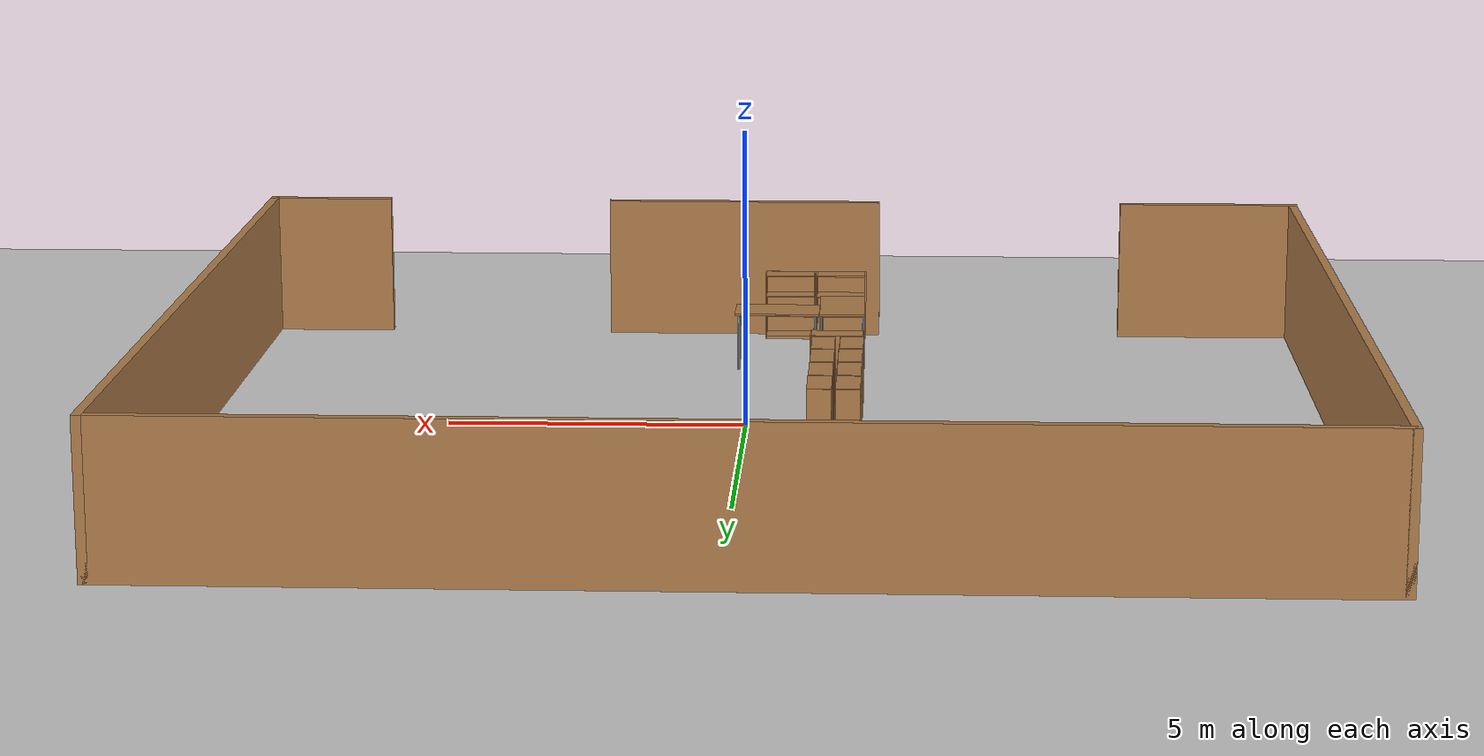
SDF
<sdf version="1.7">
 <world name="default">
  <model name="ground_plane">
   <static>1</static>
   <link name="link">
    <collision name="collision">
     <geometry><plane><normal>0 0 1</normal><size>100 100</size></plane></geometry>
     <surface><friction><ode><mu>100</mu><mu2>50</mu2></ode></friction></surface>
    </collision>
    <visual name="visual">
     <cast_shadows>0</cast_shadows>
     <geometry><plane><normal>0 0 1</normal><size>100 100</size></plane></geometry>
     <material>
      <script><uri>file://media/materials/scripts/gazebo.material</uri><name>Gazebo/Grey</name></script>
     </material>
    </visual>
   </link>
  </model>
  <model name="mart_walls">
   <pose>-0.362233 1.16692 0 0 -0 0</pose>
   <link name="Wall_10">
    <collision name="Wall_10_Collision">
     <geometry><box><size>5 0.15 2.5</size></box></geometry>
     <pose>0 0 1.25 0 -0 0</pose>
    </collision>
    <visual name="Wall_10_Visual">
     <pose>0 0 1.25 0 -0 0</pose>
     <geometry><box><size>5 0.15 2.5</size></box></geometry>
     <material>
      <script><uri>file://media/materials/scripts/gazebo.material</uri><name>Gazebo/Wood</name></script>
      <ambient>1 1 1 1</ambient>
     </material>
     <meta><layer>0</layer></meta>
    </visual>
    <pose>0.674648 -8.01815 0 0 -0 0</pose>
   </link>
   <link name="Wall_3">
    <collision name="Wall_3_Collision">
     <geometry><box><size>16.25 0.15 2.5</size></box></geometry>
     <pose>0 0 1.25 0 -0 0</pose>
    </collision>
    <visual name="Wall_3_Visual">
     <pose>0 0 1.25 0 -0 0</pose>
     <geometry><box><size>16.25 0.15 2.5</size></box></geometry>
     <material>
      <script><uri>file://media/materials/scripts/gazebo.material</uri><name>Gazebo/Wood</name></script>
      <ambient>1 1 1 1</ambient>
     </material>
     <meta><layer>0</layer></meta>
    </visual>
    <pose>-9.41858 -0 0 0 -0 1.5708</pose>
   </link>
   <link name="Wall_4">
    <collision name="Wall_4_Collision">
     <geometry><box><size>19 0.15 2.5</size></box></geometry>
     <pose>0 0 1.25 0 -0 0</pose>
    </collision>
    <visual name="Wall_4_Visual">
     <pose>0 0 1.25 0 -0 0</pose>
     <geometry><box><size>19 0.15 2.5</size></box></geometry>
     <material>
      <script><uri>file://media/materials/scripts/gazebo.material</uri><name>Gazebo/Wood</name></script>
      <ambient>1 1 1 1</ambient>
     </material>
     <meta><layer>0</layer></meta>
    </visual>
    <pose>0.006422 8.05 0 0 -0 0</pose>
   </link>
   <link name="Wall_5">
    <collision name="Wall_5_Collision">
     <geometry><box><size>16.25 0.15 2.5</size></box></geometry>
     <pose>0 0 1.25 0 -0 0</pose>
    </collision>
    <visual name="Wall_5_Visual">
     <pose>0 0 1.25 0 -0 0</pose>
     <geometry><box><size>16.25 0.15 2.5</size></box></geometry>
     <material>
      <script><uri>file://media/materials/scripts/gazebo.material</uri><name>Gazebo/Wood</name></script>
      <ambient>1 1 1 1</ambient>
     </material>
     <meta><layer>0</layer></meta>
    </visual>
    <pose>9.43142 -0 0 0 -0 -1.5708</pose>
   </link>
   <link name="Wall_6">
    <collision name="Wall_6_Collision">
     <geometry><box><size>2.25 0.15 2.5</size></box></geometry>
     <pose>0 0 1.25 0 -0 0</pose>
    </collision>
    <visual name="Wall_6_Visual">
     <pose>0 0 1.25 0 -0 0</pose>
     <geometry><box><size>2.25 0.15 2.5</size></box></geometry>
     <material>
      <script><uri>file://media/materials/scripts/gazebo.material</uri><name>Gazebo/Wood</name></script>
      <ambient>1 1 1 1</ambient>
     </material>
     <meta><layer>0</layer></meta>
    </visual>
    <pose>8.38142 -8.05 0 0 -0 3.14159</pose>
   </link>
   <link name="Wall_8">
    <collision name="Wall_8_Collision">
     <geometry><box><size>3.25 0.15 2.5</size></box></geometry>
     <pose>0 0 1.25 0 -0 0</pose>
    </collision>
    <visual name="Wall_8_Visual">
     <pose>0 0 1.25 0 -0 0</pose>
     <geometry><box><size>3.25 0.15 2.5</size></box></geometry>
     <material>
      <script><uri>file://media/materials/scripts/gazebo.material</uri><name>Gazebo/Wood</name></script>
      <ambient>1 1 1 1</ambient>
     </material>
     <meta><layer>0</layer></meta>
    </visual>
    <pose>-7.88142 -8.03854 0 0 -0 0</pose>
   </link>
   <static>1</static>
  </model>
  <model name="bookshelf_clone_1_clone_clone_4">
   <static>1</static>
   <link name="link">
    <inertial><mass>1</mass></inertial>
    <collision name="back">
     <pose>0 0.005 0.6 0 -0 0</pose>
     <geometry><box><size>0.9 0.01 1.2</size></box></geometry>
    </collision>
    <visual name="visual1">
     <pose>0 0.005 0.6 0 -0 0</pose>
     <geometry><box><size>0.9 0.01 1.2</size></box></geometry>
     <material>
      <script><uri>file://media/materials/scripts/gazebo.material</uri><name>Gazebo/Wood</name></script>
     </material>
    </visual>
    <collision name="left_side">
     <pose>0.45 -0.195 0.6 0 -0 0</pose>
     <geometry><box><size>0.02 0.4 1.2</size></box></geometry>
    </collision>
    <visual name="visual2">
     <pose>0.45 -0.195 0.6 0 -0 0</pose>
     <geometry><box><size>0.02 0.4 1.2</size></box></geometry>
     <material>
      <script><uri>file://media/materials/scripts/gazebo.material</uri><name>Gazebo/Wood</name></script>
     </material>
    </visual>
    <collision name="right_side">
     <pose>-0.45 -0.195 0.6 0 -0 0</pose>
     <geometry><box><size>0.02 0.4 1.2</size></box></geometry>
    </collision>
    <visual name="visual3">
     <pose>-0.45 -0.195 0.6 0 -0 0</pose>
     <geometry><box><size>0.02 0.4 1.2</size></box></geometry>
     <material>
      <script><uri>file://media/materials/scripts/gazebo.material</uri><name>Gazebo/Wood</name></script>
     </material>
    </visual>
    <collision name="bottom">
     <pose>0 -0.195 0.03 0 -0 0</pose>
     <geometry><box><size>0.88 0.4 0.06</size></box></geometry>
    </collision>
    <visual name="visual4">
     <pose>0 -0.195 0.03 0 -0 0</pose>
     <geometry><box><size>0.88 0.4 0.06</size></box></geometry>
     <material>
      <script><uri>file://media/materials/scripts/gazebo.material</uri><name>Gazebo/Wood</name></script>
     </material>
    </visual>
    <collision name="top">
     <pose>0 -0.195 1.19 0 -0 0</pose>
     <geometry><box><size>0.88 0.4 0.02</size></box></geometry>
    </collision>
    <visual name="visual5">
     <pose>0 -0.195 1.19 0 -0 0</pose>
     <geometry><box><size>0.88 0.4 0.02</size></box></geometry>
     <material>
      <script><uri>file://media/materials/scripts/gazebo.material</uri><name>Gazebo/Wood</name></script>
     </material>
    </visual>
    <collision name="low_shelf">
     <pose>0 -0.195 0.43 0 -0 0</pose>
     <geometry><box><size>0.88 0.4 0.02</size></box></geometry>
    </collision>
    <visual name="visual6">
     <pose>0 -0.195 0.43 0 -0 0</pose>
     <geometry><box><size>0.88 0.4 0.02</size></box></geometry>
     <material>
      <script><uri>file://media/materials/scripts/gazebo.material</uri><name>Gazebo/Wood</name></script>
     </material>
    </visual>
    <collision name="high_shelf">
     <pose>0 -0.195 0.8 0 -0 0</pose>
     <geometry><box><size>0.88 0.4 0.02</size></box></geometry>
    </collision>
    <visual name="visual7">
     <pose>0 -0.195 0.8 0 -0 0</pose>
     <geometry><box><size>0.88 0.4 0.02</size></box></geometry>
     <material>
      <script><uri>file://media/materials/scripts/gazebo.material</uri><name>Gazebo/Wood</name></script>
     </material>
    </visual>
   </link>
   <pose>-0.54357 -6.77017 0 0 0 -3.12822</pose>
  </model>
  <model name="bookshelf_clone_1_clone_clone_5">
   <static>1</static>
   <link name="link">
    <inertial><mass>1</mass></inertial>
    <collision name="back">
     <pose>0 0.005 0.6 0 -0 0</pose>
     <geometry><box><size>0.9 0.01 1.2</size></box></geometry>
    </collision>
    <visual name="visual1">
     <pose>0 0.005 0.6 0 -0 0</pose>
     <geometry><box><size>0.9 0.01 1.2</size></box></geometry>
     <material>
      <script><uri>file://media/materials/scripts/gazebo.material</uri><name>Gazebo/Wood</name></script>
     </material>
    </visual>
    <collision name="left_side">
     <pose>0.45 -0.195 0.6 0 -0 0</pose>
     <geometry><box><size>0.02 0.4 1.2</size></box></geometry>
    </collision>
    <visual name="visual2">
     <pose>0.45 -0.195 0.6 0 -0 0</pose>
     <geometry><box><size>0.02 0.4 1.2</size></box></geometry>
     <material>
      <script><uri>file://media/materials/scripts/gazebo.material</uri><name>Gazebo/Wood</name></script>
     </material>
    </visual>
    <collision name="right_side">
     <pose>-0.45 -0.195 0.6 0 -0 0</pose>
     <geometry><box><size>0.02 0.4 1.2</size></box></geometry>
    </collision>
    <visual name="visual3">
     <pose>-0.45 -0.195 0.6 0 -0 0</pose>
     <geometry><box><size>0.02 0.4 1.2</size></box></geometry>
     <material>
      <script><uri>file://media/materials/scripts/gazebo.material</uri><name>Gazebo/Wood</name></script>
     </material>
    </visual>
    <collision name="bottom">
     <pose>0 -0.195 0.03 0 -0 0</pose>
     <geometry><box><size>0.88 0.4 0.06</size></box></geometry>
    </collision>
    <visual name="visual4">
     <pose>0 -0.195 0.03 0 -0 0</pose>
     <geometry><box><size>0.88 0.4 0.06</size></box></geometry>
     <material>
      <script><uri>file://media/materials/scripts/gazebo.material</uri><name>Gazebo/Wood</name></script>
     </material>
    </visual>
    <collision name="top">
     <pose>0 -0.195 1.19 0 -0 0</pose>
     <geometry><box><size>0.88 0.4 0.02</size></box></geometry>
    </collision>
    <visual name="visual5">
     <pose>0 -0.195 1.19 0 -0 0</pose>
     <geometry><box><size>0.88 0.4 0.02</size></box></geometry>
     <material>
      <script><uri>file://media/materials/scripts/gazebo.material</uri><name>Gazebo/Wood</name></script>
     </material>
    </visual>
    <collision name="low_shelf">
     <pose>0 -0.195 0.43 0 -0 0</pose>
     <geometry><box><size>0.88 0.4 0.02</size></box></geometry>
    </collision>
    <visual name="visual6">
     <pose>0 -0.195 0.43 0 -0 0</pose>
     <geometry><box><size>0.88 0.4 0.02</size></box></geometry>
     <material>
      <script><uri>file://media/materials/scripts/gazebo.material</uri><name>Gazebo/Wood</name></script>
     </material>
    </visual>
    <collision name="high_shelf">
     <pose>0 -0.195 0.8 0 -0 0</pose>
     <geometry><box><size>0.88 0.4 0.02</size></box></geometry>
    </collision>
    <visual name="visual7">
     <pose>0 -0.195 0.8 0 -0 0</pose>
     <geometry><box><size>0.88 0.4 0.02</size></box></geometry>
     <material>
      <script><uri>file://media/materials/scripts/gazebo.material</uri><name>Gazebo/Wood</name></script>
     </material>
    </visual>
   </link>
   <pose>-1.47846 -6.76423 0 0 0 -3.12822</pose>
  </model>
  <model name="bookshelf_clone_3">
   <static>1</static>
   <link name="link">
    <inertial><mass>1</mass></inertial>
    <collision name="back">
     <pose>0 0.005 0.6 0 -0 0</pose>
     <geometry><box><size>0.9 0.01 1.2</size></box></geometry>
    </collision>
    <visual name="visual1">
     <pose>0 0.005 0.6 0 -0 0</pose>
     <geometry><box><size>0.9 0.01 1.2</size></box></geometry>
     <material>
      <script><uri>file://media/materials/scripts/gazebo.material</uri><name>Gazebo/Wood</name></script>
     </material>
    </visual>
    <collision name="left_side">
     <pose>0.45 -0.195 0.6 0 -0 0</pose>
     <geometry><box><size>0.02 0.4 1.2</size></box></geometry>
    </collision>
    <visual name="visual2">
     <pose>0.45 -0.195 0.6 0 -0 0</pose>
     <geometry><box><size>0.02 0.4 1.2</size></box></geometry>
     <material>
      <script><uri>file://media/materials/scripts/gazebo.material</uri><name>Gazebo/Wood</name></script>
     </material>
    </visual>
    <collision name="right_side">
     <pose>-0.45 -0.195 0.6 0 -0 0</pose>
     <geometry><box><size>0.02 0.4 1.2</size></box></geometry>
    </collision>
    <visual name="visual3">
     <pose>-0.45 -0.195 0.6 0 -0 0</pose>
     <geometry><box><size>0.02 0.4 1.2</size></box></geometry>
     <material>
      <script><uri>file://media/materials/scripts/gazebo.material</uri><name>Gazebo/Wood</name></script>
     </material>
    </visual>
    <collision name="bottom">
     <pose>0 -0.195 0.03 0 -0 0</pose>
     <geometry><box><size>0.88 0.4 0.06</size></box></geometry>
    </collision>
    <visual name="visual4">
     <pose>0 -0.195 0.03 0 -0 0</pose>
     <geometry><box><size>0.88 0.4 0.06</size></box></geometry>
     <material>
      <script><uri>file://media/materials/scripts/gazebo.material</uri><name>Gazebo/Wood</name></script>
     </material>
    </visual>
    <collision name="top">
     <pose>0 -0.195 1.19 0 -0 0</pose>
     <geometry><box><size>0.88 0.4 0.02</size></box></geometry>
    </collision>
    <visual name="visual5">
     <pose>0 -0.195 1.19 0 -0 0</pose>
     <geometry><box><size>0.88 0.4 0.02</size></box></geometry>
     <material>
      <script><uri>file://media/materials/scripts/gazebo.material</uri><name>Gazebo/Wood</name></script>
     </material>
    </visual>
    <collision name="low_shelf">
     <pose>0 -0.195 0.43 0 -0 0</pose>
     <geometry><box><size>0.88 0.4 0.02</size></box></geometry>
    </collision>
    <visual name="visual6">
     <pose>0 -0.195 0.43 0 -0 0</pose>
     <geometry><box><size>0.88 0.4 0.02</size></box></geometry>
     <material>
      <script><uri>file://media/materials/scripts/gazebo.material</uri><name>Gazebo/Wood</name></script>
     </material>
    </visual>
    <collision name="high_shelf">
     <pose>0 -0.195 0.8 0 -0 0</pose>
     <geometry><box><size>0.88 0.4 0.02</size></box></geometry>
    </collision>
    <visual name="visual7">
     <pose>0 -0.195 0.8 0 -0 0</pose>
     <geometry><box><size>0.88 0.4 0.02</size></box></geometry>
     <material>
      <script><uri>file://media/materials/scripts/gazebo.material</uri><name>Gazebo/Wood</name></script>
     </material>
    </visual>
   </link>
   <pose>-1.49506 -1.57268 0 0 -0 0</pose>
  </model>
  <model name="bookshelf_clone_2_clone_7">
   <static>1</static>
   <link name="link">
    <inertial><mass>1</mass></inertial>
    <collision name="back">
     <pose>0 0.005 0.6 0 -0 0</pose>
     <geometry><box><size>0.9 0.01 1.2</size></box></geometry>
    </collision>
    <visual name="visual1">
     <pose>0 0.005 0.6 0 -0 0</pose>
     <geometry><box><size>0.9 0.01 1.2</size></box></geometry>
     <material>
      <script><uri>file://media/materials/scripts/gazebo.material</uri><name>Gazebo/Wood</name></script>
     </material>
    </visual>
    <collision name="left_side">
     <pose>0.45 -0.195 0.6 0 -0 0</pose>
     <geometry><box><size>0.02 0.4 1.2</size></box></geometry>
    </collision>
    <visual name="visual2">
     <pose>0.45 -0.195 0.6 0 -0 0</pose>
     <geometry><box><size>0.02 0.4 1.2</size></box></geometry>
     <material>
      <script><uri>file://media/materials/scripts/gazebo.material</uri><name>Gazebo/Wood</name></script>
     </material>
    </visual>
    <collision name="right_side">
     <pose>-0.45 -0.195 0.6 0 -0 0</pose>
     <geometry><box><size>0.02 0.4 1.2</size></box></geometry>
    </collision>
    <visual name="visual3">
     <pose>-0.45 -0.195 0.6 0 -0 0</pose>
     <geometry><box><size>0.02 0.4 1.2</size></box></geometry>
     <material>
      <script><uri>file://media/materials/scripts/gazebo.material</uri><name>Gazebo/Wood</name></script>
     </material>
    </visual>
    <collision name="bottom">
     <pose>0 -0.195 0.03 0 -0 0</pose>
     <geometry><box><size>0.88 0.4 0.06</size></box></geometry>
    </collision>
    <visual name="visual4">
     <pose>0 -0.195 0.03 0 -0 0</pose>
     <geometry><box><size>0.88 0.4 0.06</size></box></geometry>
     <material>
      <script><uri>file://media/materials/scripts/gazebo.material</uri><name>Gazebo/Wood</name></script>
     </material>
    </visual>
    <collision name="top">
     <pose>0 -0.195 1.19 0 -0 0</pose>
     <geometry><box><size>0.88 0.4 0.02</size></box></geometry>
    </collision>
    <visual name="visual5">
     <pose>0 -0.195 1.19 0 -0 0</pose>
     <geometry><box><size>0.88 0.4 0.02</size></box></geometry>
     <material>
      <script><uri>file://media/materials/scripts/gazebo.material</uri><name>Gazebo/Wood</name></script>
     </material>
    </visual>
    <collision name="low_shelf">
     <pose>0 -0.195 0.43 0 -0 0</pose>
     <geometry><box><size>0.88 0.4 0.02</size></box></geometry>
    </collision>
    <visual name="visual6">
     <pose>0 -0.195 0.43 0 -0 0</pose>
     <geometry><box><size>0.88 0.4 0.02</size></box></geometry>
     <material>
      <script><uri>file://media/materials/scripts/gazebo.material</uri><name>Gazebo/Wood</name></script>
     </material>
    </visual>
    <collision name="high_shelf">
     <pose>0 -0.195 0.8 0 -0 0</pose>
     <geometry><box><size>0.88 0.4 0.02</size></box></geometry>
    </collision>
    <visual name="visual7">
     <pose>0 -0.195 0.8 0 -0 0</pose>
     <geometry><box><size>0.88 0.4 0.02</size></box></geometry>
     <material>
      <script><uri>file://media/materials/scripts/gazebo.material</uri><name>Gazebo/Wood</name></script>
     </material>
    </visual>
   </link>
   <pose>-1.55839 -1.06853 0 0 0 -1.57136</pose>
  </model>
  <model name="bookshelf_clone_2_clone_8">
   <static>1</static>
   <link name="link">
    <inertial><mass>1</mass></inertial>
    <collision name="back">
     <pose>0 0.005 0.6 0 -0 0</pose>
     <geometry><box><size>0.9 0.01 1.2</size></box></geometry>
    </collision>
    <visual name="visual1">
     <pose>0 0.005 0.6 0 -0 0</pose>
     <geometry><box><size>0.9 0.01 1.2</size></box></geometry>
     <material>
      <script><uri>file://media/materials/scripts/gazebo.material</uri><name>Gazebo/Wood</name></script>
     </material>
    </visual>
    <collision name="left_side">
     <pose>0.45 -0.195 0.6 0 -0 0</pose>
     <geometry><box><size>0.02 0.4 1.2</size></box></geometry>
    </collision>
    <visual name="visual2">
     <pose>0.45 -0.195 0.6 0 -0 0</pose>
     <geometry><box><size>0.02 0.4 1.2</size></box></geometry>
     <material>
      <script><uri>file://media/materials/scripts/gazebo.material</uri><name>Gazebo/Wood</name></script>
     </material>
    </visual>
    <collision name="right_side">
     <pose>-0.45 -0.195 0.6 0 -0 0</pose>
     <geometry><box><size>0.02 0.4 1.2</size></box></geometry>
    </collision>
    <visual name="visual3">
     <pose>-0.45 -0.195 0.6 0 -0 0</pose>
     <geometry><box><size>0.02 0.4 1.2</size></box></geometry>
     <material>
      <script><uri>file://media/materials/scripts/gazebo.material</uri><name>Gazebo/Wood</name></script>
     </material>
    </visual>
    <collision name="bottom">
     <pose>0 -0.195 0.03 0 -0 0</pose>
     <geometry><box><size>0.88 0.4 0.06</size></box></geometry>
    </collision>
    <visual name="visual4">
     <pose>0 -0.195 0.03 0 -0 0</pose>
     <geometry><box><size>0.88 0.4 0.06</size></box></geometry>
     <material>
      <script><uri>file://media/materials/scripts/gazebo.material</uri><name>Gazebo/Wood</name></script>
     </material>
    </visual>
    <collision name="top">
     <pose>0 -0.195 1.19 0 -0 0</pose>
     <geometry><box><size>0.88 0.4 0.02</size></box></geometry>
    </collision>
    <visual name="visual5">
     <pose>0 -0.195 1.19 0 -0 0</pose>
     <geometry><box><size>0.88 0.4 0.02</size></box></geometry>
     <material>
      <script><uri>file://media/materials/scripts/gazebo.material</uri><name>Gazebo/Wood</name></script>
     </material>
    </visual>
    <collision name="low_shelf">
     <pose>0 -0.195 0.43 0 -0 0</pose>
     <geometry><box><size>0.88 0.4 0.02</size></box></geometry>
    </collision>
    <visual name="visual6">
     <pose>0 -0.195 0.43 0 -0 0</pose>
     <geometry><box><size>0.88 0.4 0.02</size></box></geometry>
     <material>
      <script><uri>file://media/materials/scripts/gazebo.material</uri><name>Gazebo/Wood</name></script>
     </material>
    </visual>
    <collision name="high_shelf">
     <pose>0 -0.195 0.8 0 -0 0</pose>
     <geometry><box><size>0.88 0.4 0.02</size></box></geometry>
    </collision>
    <visual name="visual7">
     <pose>0 -0.195 0.8 0 -0 0</pose>
     <geometry><box><size>0.88 0.4 0.02</size></box></geometry>
     <material>
      <script><uri>file://media/materials/scripts/gazebo.material</uri><name>Gazebo/Wood</name></script>
     </material>
    </visual>
   </link>
   <pose>-1.55046 -0.125995 0 0 0 -1.57136</pose>
  </model>
  <model name="bookshelf_clone_2_clone_9">
   <static>1</static>
   <link name="link">
    <inertial><mass>1</mass></inertial>
    <collision name="back">
     <pose>0 0.005 0.6 0 -0 0</pose>
     <geometry><box><size>0.9 0.01 1.2</size></box></geometry>
    </collision>
    <visual name="visual1">
     <pose>0 0.005 0.6 0 -0 0</pose>
     <geometry><box><size>0.9 0.01 1.2</size></box></geometry>
     <material>
      <script><uri>file://media/materials/scripts/gazebo.material</uri><name>Gazebo/Wood</name></script>
     </material>
    </visual>
    <collision name="left_side">
     <pose>0.45 -0.195 0.6 0 -0 0</pose>
     <geometry><box><size>0.02 0.4 1.2</size></box></geometry>
    </collision>
    <visual name="visual2">
     <pose>0.45 -0.195 0.6 0 -0 0</pose>
     <geometry><box><size>0.02 0.4 1.2</size></box></geometry>
     <material>
      <script><uri>file://media/materials/scripts/gazebo.material</uri><name>Gazebo/Wood</name></script>
     </material>
    </visual>
    <collision name="right_side">
     <pose>-0.45 -0.195 0.6 0 -0 0</pose>
     <geometry><box><size>0.02 0.4 1.2</size></box></geometry>
    </collision>
    <visual name="visual3">
     <pose>-0.45 -0.195 0.6 0 -0 0</pose>
     <geometry><box><size>0.02 0.4 1.2</size></box></geometry>
     <material>
      <script><uri>file://media/materials/scripts/gazebo.material</uri><name>Gazebo/Wood</name></script>
     </material>
    </visual>
    <collision name="bottom">
     <pose>0 -0.195 0.03 0 -0 0</pose>
     <geometry><box><size>0.88 0.4 0.06</size></box></geometry>
    </collision>
    <visual name="visual4">
     <pose>0 -0.195 0.03 0 -0 0</pose>
     <geometry><box><size>0.88 0.4 0.06</size></box></geometry>
     <material>
      <script><uri>file://media/materials/scripts/gazebo.material</uri><name>Gazebo/Wood</name></script>
     </material>
    </visual>
    <collision name="top">
     <pose>0 -0.195 1.19 0 -0 0</pose>
     <geometry><box><size>0.88 0.4 0.02</size></box></geometry>
    </collision>
    <visual name="visual5">
     <pose>0 -0.195 1.19 0 -0 0</pose>
     <geometry><box><size>0.88 0.4 0.02</size></box></geometry>
     <material>
      <script><uri>file://media/materials/scripts/gazebo.material</uri><name>Gazebo/Wood</name></script>
     </material>
    </visual>
    <collision name="low_shelf">
     <pose>0 -0.195 0.43 0 -0 0</pose>
     <geometry><box><size>0.88 0.4 0.02</size></box></geometry>
    </collision>
    <visual name="visual6">
     <pose>0 -0.195 0.43 0 -0 0</pose>
     <geometry><box><size>0.88 0.4 0.02</size></box></geometry>
     <material>
      <script><uri>file://media/materials/scripts/gazebo.material</uri><name>Gazebo/Wood</name></script>
     </material>
    </visual>
    <collision name="high_shelf">
     <pose>0 -0.195 0.8 0 -0 0</pose>
     <geometry><box><size>0.88 0.4 0.02</size></box></geometry>
    </collision>
    <visual name="visual7">
     <pose>0 -0.195 0.8 0 -0 0</pose>
     <geometry><box><size>0.88 0.4 0.02</size></box></geometry>
     <material>
      <script><uri>file://media/materials/scripts/gazebo.material</uri><name>Gazebo/Wood</name></script>
     </material>
    </visual>
   </link>
   <pose>-1.54661 0.804727 0 0 0 -1.57136</pose>
  </model>
  <model name="bookshelf_clone_2_clone_10">
   <static>1</static>
   <link name="link">
    <inertial><mass>1</mass></inertial>
    <collision name="back">
     <pose>0 0.005 0.6 0 -0 0</pose>
     <geometry><box><size>0.9 0.01 1.2</size></box></geometry>
    </collision>
    <visual name="visual1">
     <pose>0 0.005 0.6 0 -0 0</pose>
     <geometry><box><size>0.9 0.01 1.2</size></box></geometry>
     <material>
      <script><uri>file://media/materials/scripts/gazebo.material</uri><name>Gazebo/Wood</name></script>
     </material>
    </visual>
    <collision name="left_side">
     <pose>0.45 -0.195 0.6 0 -0 0</pose>
     <geometry><box><size>0.02 0.4 1.2</size></box></geometry>
    </collision>
    <visual name="visual2">
     <pose>0.45 -0.195 0.6 0 -0 0</pose>
     <geometry><box><size>0.02 0.4 1.2</size></box></geometry>
     <material>
      <script><uri>file://media/materials/scripts/gazebo.material</uri><name>Gazebo/Wood</name></script>
     </material>
    </visual>
    <collision name="right_side">
     <pose>-0.45 -0.195 0.6 0 -0 0</pose>
     <geometry><box><size>0.02 0.4 1.2</size></box></geometry>
    </collision>
    <visual name="visual3">
     <pose>-0.45 -0.195 0.6 0 -0 0</pose>
     <geometry><box><size>0.02 0.4 1.2</size></box></geometry>
     <material>
      <script><uri>file://media/materials/scripts/gazebo.material</uri><name>Gazebo/Wood</name></script>
     </material>
    </visual>
    <collision name="bottom">
     <pose>0 -0.195 0.03 0 -0 0</pose>
     <geometry><box><size>0.88 0.4 0.06</size></box></geometry>
    </collision>
    <visual name="visual4">
     <pose>0 -0.195 0.03 0 -0 0</pose>
     <geometry><box><size>0.88 0.4 0.06</size></box></geometry>
     <material>
      <script><uri>file://media/materials/scripts/gazebo.material</uri><name>Gazebo/Wood</name></script>
     </material>
    </visual>
    <collision name="top">
     <pose>0 -0.195 1.19 0 -0 0</pose>
     <geometry><box><size>0.88 0.4 0.02</size></box></geometry>
    </collision>
    <visual name="visual5">
     <pose>0 -0.195 1.19 0 -0 0</pose>
     <geometry><box><size>0.88 0.4 0.02</size></box></geometry>
     <material>
      <script><uri>file://media/materials/scripts/gazebo.material</uri><name>Gazebo/Wood</name></script>
     </material>
    </visual>
    <collision name="low_shelf">
     <pose>0 -0.195 0.43 0 -0 0</pose>
     <geometry><box><size>0.88 0.4 0.02</size></box></geometry>
    </collision>
    <visual name="visual6">
     <pose>0 -0.195 0.43 0 -0 0</pose>
     <geometry><box><size>0.88 0.4 0.02</size></box></geometry>
     <material>
      <script><uri>file://media/materials/scripts/gazebo.material</uri><name>Gazebo/Wood</name></script>
     </material>
    </visual>
    <collision name="high_shelf">
     <pose>0 -0.195 0.8 0 -0 0</pose>
     <geometry><box><size>0.88 0.4 0.02</size></box></geometry>
    </collision>
    <visual name="visual7">
     <pose>0 -0.195 0.8 0 -0 0</pose>
     <geometry><box><size>0.88 0.4 0.02</size></box></geometry>
     <material>
      <script><uri>file://media/materials/scripts/gazebo.material</uri><name>Gazebo/Wood</name></script>
     </material>
    </visual>
   </link>
   <pose>-1.54578 1.74274 0 0 0 -1.57136</pose>
  </model>
  <model name="bookshelf_clone_2_clone_clone_0_clone_3_clone_clone_2">
   <static>1</static>
   <link name="link">
    <inertial><mass>1</mass></inertial>
    <collision name="back">
     <pose>0 0.005 0.6 0 -0 0</pose>
     <geometry><box><size>0.9 0.01 1.2</size></box></geometry>
    </collision>
    <visual name="visual1">
     <pose>0 0.005 0.6 0 -0 0</pose>
     <geometry><box><size>0.9 0.01 1.2</size></box></geometry>
     <material>
      <script><uri>file://media/materials/scripts/gazebo.material</uri><name>Gazebo/Wood</name></script>
     </material>
    </visual>
    <collision name="left_side">
     <pose>0.45 -0.195 0.6 0 -0 0</pose>
     <geometry><box><size>0.02 0.4 1.2</size></box></geometry>
    </collision>
    <visual name="visual2">
     <pose>0.45 -0.195 0.6 0 -0 0</pose>
     <geometry><box><size>0.02 0.4 1.2</size></box></geometry>
     <material>
      <script><uri>file://media/materials/scripts/gazebo.material</uri><name>Gazebo/Wood</name></script>
     </material>
    </visual>
    <collision name="right_side">
     <pose>-0.45 -0.195 0.6 0 -0 0</pose>
     <geometry><box><size>0.02 0.4 1.2</size></box></geometry>
    </collision>
    <visual name="visual3">
     <pose>-0.45 -0.195 0.6 0 -0 0</pose>
     <geometry><box><size>0.02 0.4 1.2</size></box></geometry>
     <material>
      <script><uri>file://media/materials/scripts/gazebo.material</uri><name>Gazebo/Wood</name></script>
     </material>
    </visual>
    <collision name="bottom">
     <pose>0 -0.195 0.03 0 -0 0</pose>
     <geometry><box><size>0.88 0.4 0.06</size></box></geometry>
    </collision>
    <visual name="visual4">
     <pose>0 -0.195 0.03 0 -0 0</pose>
     <geometry><box><size>0.88 0.4 0.06</size></box></geometry>
     <material>
      <script><uri>file://media/materials/scripts/gazebo.material</uri><name>Gazebo/Wood</name></script>
     </material>
    </visual>
    <collision name="top">
     <pose>0 -0.195 1.19 0 -0 0</pose>
     <geometry><box><size>0.88 0.4 0.02</size></box></geometry>
    </collision>
    <visual name="visual5">
     <pose>0 -0.195 1.19 0 -0 0</pose>
     <geometry><box><size>0.88 0.4 0.02</size></box></geometry>
     <material>
      <script><uri>file://media/materials/scripts/gazebo.material</uri><name>Gazebo/Wood</name></script>
     </material>
    </visual>
    <collision name="low_shelf">
     <pose>0 -0.195 0.43 0 -0 0</pose>
     <geometry><box><size>0.88 0.4 0.02</size></box></geometry>
    </collision>
    <visual name="visual6">
     <pose>0 -0.195 0.43 0 -0 0</pose>
     <geometry><box><size>0.88 0.4 0.02</size></box></geometry>
     <material>
      <script><uri>file://media/materials/scripts/gazebo.material</uri><name>Gazebo/Wood</name></script>
     </material>
    </visual>
    <collision name="high_shelf">
     <pose>0 -0.195 0.8 0 -0 0</pose>
     <geometry><box><size>0.88 0.4 0.02</size></box></geometry>
    </collision>
    <visual name="visual7">
     <pose>0 -0.195 0.8 0 -0 0</pose>
     <geometry><box><size>0.88 0.4 0.02</size></box></geometry>
     <material>
      <script><uri>file://media/materials/scripts/gazebo.material</uri><name>Gazebo/Wood</name></script>
     </material>
    </visual>
   </link>
   <pose>-1.46723 1.74907 0 0 -0 1.57553</pose>
  </model>
  <model name="bookshelf_clone_2_clone_clone_0_clone_3_clone_clone_3">
   <static>1</static>
   <link name="link">
    <inertial><mass>1</mass></inertial>
    <collision name="back">
     <pose>0 0.005 0.6 0 -0 0</pose>
     <geometry><box><size>0.9 0.01 1.2</size></box></geometry>
    </collision>
    <visual name="visual1">
     <pose>0 0.005 0.6 0 -0 0</pose>
     <geometry><box><size>0.9 0.01 1.2</size></box></geometry>
     <material>
      <script><uri>file://media/materials/scripts/gazebo.material</uri><name>Gazebo/Wood</name></script>
     </material>
    </visual>
    <collision name="left_side">
     <pose>0.45 -0.195 0.6 0 -0 0</pose>
     <geometry><box><size>0.02 0.4 1.2</size></box></geometry>
    </collision>
    <visual name="visual2">
     <pose>0.45 -0.195 0.6 0 -0 0</pose>
     <geometry><box><size>0.02 0.4 1.2</size></box></geometry>
     <material>
      <script><uri>file://media/materials/scripts/gazebo.material</uri><name>Gazebo/Wood</name></script>
     </material>
    </visual>
    <collision name="right_side">
     <pose>-0.45 -0.195 0.6 0 -0 0</pose>
     <geometry><box><size>0.02 0.4 1.2</size></box></geometry>
    </collision>
    <visual name="visual3">
     <pose>-0.45 -0.195 0.6 0 -0 0</pose>
     <geometry><box><size>0.02 0.4 1.2</size></box></geometry>
     <material>
      <script><uri>file://media/materials/scripts/gazebo.material</uri><name>Gazebo/Wood</name></script>
     </material>
    </visual>
    <collision name="bottom">
     <pose>0 -0.195 0.03 0 -0 0</pose>
     <geometry><box><size>0.88 0.4 0.06</size></box></geometry>
    </collision>
    <visual name="visual4">
     <pose>0 -0.195 0.03 0 -0 0</pose>
     <geometry><box><size>0.88 0.4 0.06</size></box></geometry>
     <material>
      <script><uri>file://media/materials/scripts/gazebo.material</uri><name>Gazebo/Wood</name></script>
     </material>
    </visual>
    <collision name="top">
     <pose>0 -0.195 1.19 0 -0 0</pose>
     <geometry><box><size>0.88 0.4 0.02</size></box></geometry>
    </collision>
    <visual name="visual5">
     <pose>0 -0.195 1.19 0 -0 0</pose>
     <geometry><box><size>0.88 0.4 0.02</size></box></geometry>
     <material>
      <script><uri>file://media/materials/scripts/gazebo.material</uri><name>Gazebo/Wood</name></script>
     </material>
    </visual>
    <collision name="low_shelf">
     <pose>0 -0.195 0.43 0 -0 0</pose>
     <geometry><box><size>0.88 0.4 0.02</size></box></geometry>
    </collision>
    <visual name="visual6">
     <pose>0 -0.195 0.43 0 -0 0</pose>
     <geometry><box><size>0.88 0.4 0.02</size></box></geometry>
     <material>
      <script><uri>file://media/materials/scripts/gazebo.material</uri><name>Gazebo/Wood</name></script>
     </material>
    </visual>
    <collision name="high_shelf">
     <pose>0 -0.195 0.8 0 -0 0</pose>
     <geometry><box><size>0.88 0.4 0.02</size></box></geometry>
    </collision>
    <visual name="visual7">
     <pose>0 -0.195 0.8 0 -0 0</pose>
     <geometry><box><size>0.88 0.4 0.02</size></box></geometry>
     <material>
      <script><uri>file://media/materials/scripts/gazebo.material</uri><name>Gazebo/Wood</name></script>
     </material>
    </visual>
   </link>
   <pose>-1.47001 0.822173 0 0 -0 1.57553</pose>
  </model>
  <model name="bookshelf_clone_2_clone_clone_0_clone_3_clone_clone_4">
   <static>1</static>
   <link name="link">
    <inertial><mass>1</mass></inertial>
    <collision name="back">
     <pose>0 0.005 0.6 0 -0 0</pose>
     <geometry><box><size>0.9 0.01 1.2</size></box></geometry>
    </collision>
    <visual name="visual1">
     <pose>0 0.005 0.6 0 -0 0</pose>
     <geometry><box><size>0.9 0.01 1.2</size></box></geometry>
     <material>
      <script><uri>file://media/materials/scripts/gazebo.material</uri><name>Gazebo/Wood</name></script>
     </material>
    </visual>
    <collision name="left_side">
     <pose>0.45 -0.195 0.6 0 -0 0</pose>
     <geometry><box><size>0.02 0.4 1.2</size></box></geometry>
    </collision>
    <visual name="visual2">
     <pose>0.45 -0.195 0.6 0 -0 0</pose>
     <geometry><box><size>0.02 0.4 1.2</size></box></geometry>
     <material>
      <script><uri>file://media/materials/scripts/gazebo.material</uri><name>Gazebo/Wood</name></script>
     </material>
    </visual>
    <collision name="right_side">
     <pose>-0.45 -0.195 0.6 0 -0 0</pose>
     <geometry><box><size>0.02 0.4 1.2</size></box></geometry>
    </collision>
    <visual name="visual3">
     <pose>-0.45 -0.195 0.6 0 -0 0</pose>
     <geometry><box><size>0.02 0.4 1.2</size></box></geometry>
     <material>
      <script><uri>file://media/materials/scripts/gazebo.material</uri><name>Gazebo/Wood</name></script>
     </material>
    </visual>
    <collision name="bottom">
     <pose>0 -0.195 0.03 0 -0 0</pose>
     <geometry><box><size>0.88 0.4 0.06</size></box></geometry>
    </collision>
    <visual name="visual4">
     <pose>0 -0.195 0.03 0 -0 0</pose>
     <geometry><box><size>0.88 0.4 0.06</size></box></geometry>
     <material>
      <script><uri>file://media/materials/scripts/gazebo.material</uri><name>Gazebo/Wood</name></script>
     </material>
    </visual>
    <collision name="top">
     <pose>0 -0.195 1.19 0 -0 0</pose>
     <geometry><box><size>0.88 0.4 0.02</size></box></geometry>
    </collision>
    <visual name="visual5">
     <pose>0 -0.195 1.19 0 -0 0</pose>
     <geometry><box><size>0.88 0.4 0.02</size></box></geometry>
     <material>
      <script><uri>file://media/materials/scripts/gazebo.material</uri><name>Gazebo/Wood</name></script>
     </material>
    </visual>
    <collision name="low_shelf">
     <pose>0 -0.195 0.43 0 -0 0</pose>
     <geometry><box><size>0.88 0.4 0.02</size></box></geometry>
    </collision>
    <visual name="visual6">
     <pose>0 -0.195 0.43 0 -0 0</pose>
     <geometry><box><size>0.88 0.4 0.02</size></box></geometry>
     <material>
      <script><uri>file://media/materials/scripts/gazebo.material</uri><name>Gazebo/Wood</name></script>
     </material>
    </visual>
    <collision name="high_shelf">
     <pose>0 -0.195 0.8 0 -0 0</pose>
     <geometry><box><size>0.88 0.4 0.02</size></box></geometry>
    </collision>
    <visual name="visual7">
     <pose>0 -0.195 0.8 0 -0 0</pose>
     <geometry><box><size>0.88 0.4 0.02</size></box></geometry>
     <material>
      <script><uri>file://media/materials/scripts/gazebo.material</uri><name>Gazebo/Wood</name></script>
     </material>
    </visual>
   </link>
   <pose>-1.47226 -0.103286 0 0 -0 1.57553</pose>
  </model>
  <model name="bookshelf_clone_2_clone_clone_0_clone_3_clone_clone_5">
   <static>1</static>
   <link name="link">
    <inertial><mass>1</mass></inertial>
    <collision name="back">
     <pose>0 0.005 0.6 0 -0 0</pose>
     <geometry><box><size>0.9 0.01 1.2</size></box></geometry>
    </collision>
    <visual name="visual1">
     <pose>0 0.005 0.6 0 -0 0</pose>
     <geometry><box><size>0.9 0.01 1.2</size></box></geometry>
     <material>
      <script><uri>file://media/materials/scripts/gazebo.material</uri><name>Gazebo/Wood</name></script>
     </material>
    </visual>
    <collision name="left_side">
     <pose>0.45 -0.195 0.6 0 -0 0</pose>
     <geometry><box><size>0.02 0.4 1.2</size></box></geometry>
    </collision>
    <visual name="visual2">
     <pose>0.45 -0.195 0.6 0 -0 0</pose>
     <geometry><box><size>0.02 0.4 1.2</size></box></geometry>
     <material>
      <script><uri>file://media/materials/scripts/gazebo.material</uri><name>Gazebo/Wood</name></script>
     </material>
    </visual>
    <collision name="right_side">
     <pose>-0.45 -0.195 0.6 0 -0 0</pose>
     <geometry><box><size>0.02 0.4 1.2</size></box></geometry>
    </collision>
    <visual name="visual3">
     <pose>-0.45 -0.195 0.6 0 -0 0</pose>
     <geometry><box><size>0.02 0.4 1.2</size></box></geometry>
     <material>
      <script><uri>file://media/materials/scripts/gazebo.material</uri><name>Gazebo/Wood</name></script>
     </material>
    </visual>
    <collision name="bottom">
     <pose>0 -0.195 0.03 0 -0 0</pose>
     <geometry><box><size>0.88 0.4 0.06</size></box></geometry>
    </collision>
    <visual name="visual4">
     <pose>0 -0.195 0.03 0 -0 0</pose>
     <geometry><box><size>0.88 0.4 0.06</size></box></geometry>
     <material>
      <script><uri>file://media/materials/scripts/gazebo.material</uri><name>Gazebo/Wood</name></script>
     </material>
    </visual>
    <collision name="top">
     <pose>0 -0.195 1.19 0 -0 0</pose>
     <geometry><box><size>0.88 0.4 0.02</size></box></geometry>
    </collision>
    <visual name="visual5">
     <pose>0 -0.195 1.19 0 -0 0</pose>
     <geometry><box><size>0.88 0.4 0.02</size></box></geometry>
     <material>
      <script><uri>file://media/materials/scripts/gazebo.material</uri><name>Gazebo/Wood</name></script>
     </material>
    </visual>
    <collision name="low_shelf">
     <pose>0 -0.195 0.43 0 -0 0</pose>
     <geometry><box><size>0.88 0.4 0.02</size></box></geometry>
    </collision>
    <visual name="visual6">
     <pose>0 -0.195 0.43 0 -0 0</pose>
     <geometry><box><size>0.88 0.4 0.02</size></box></geometry>
     <material>
      <script><uri>file://media/materials/scripts/gazebo.material</uri><name>Gazebo/Wood</name></script>
     </material>
    </visual>
    <collision name="high_shelf">
     <pose>0 -0.195 0.8 0 -0 0</pose>
     <geometry><box><size>0.88 0.4 0.02</size></box></geometry>
    </collision>
    <visual name="visual7">
     <pose>0 -0.195 0.8 0 -0 0</pose>
     <geometry><box><size>0.88 0.4 0.02</size></box></geometry>
     <material>
      <script><uri>file://media/materials/scripts/gazebo.material</uri><name>Gazebo/Wood</name></script>
     </material>
    </visual>
   </link>
   <pose>-1.46913 -1.03778 0 0 -0 1.57553</pose>
  </model>
  <model name="table_clone_0">
   <static>1</static>
   <link name="link">
    <collision name="surface">
     <pose>0 0 1 0 -0 0</pose>
     <geometry><box><size>1.5 0.8 0.03</size></box></geometry>
     <surface><friction><ode><mu>0.6</mu><mu2>0.6</mu2></ode></friction></surface>
    </collision>
    <visual name="visual1">
     <pose>0 0 1 0 -0 0</pose>
     <geometry><box><size>1.5 0.8 0.03</size></box></geometry>
     <material>
      <script><uri>file://media/materials/scripts/gazebo.material</uri><name>Gazebo/Wood</name></script>
     </material>
    </visual>
    <collision name="front_left_leg">
     <pose>0.68 0.38 0.5 0 -0 0</pose>
     <geometry><cylinder><radius>0.02</radius><length>1</length></cylinder></geometry>
    </collision>
    <visual name="front_left_leg">
     <pose>0.68 0.38 0.5 0 -0 0</pose>
     <geometry><cylinder><radius>0.02</radius><length>1</length></cylinder></geometry>
     <material>
      <script><uri>file://media/materials/scripts/gazebo.material</uri><name>Gazebo/Grey</name></script>
     </material>
    </visual>
    <collision name="front_right_leg">
     <pose>0.68 -0.38 0.5 0 -0 0</pose>
     <geometry><cylinder><radius>0.02</radius><length>1</length></cylinder></geometry>
    </collision>
    <visual name="front_right_leg">
     <pose>0.68 -0.38 0.5 0 -0 0</pose>
     <geometry><cylinder><radius>0.02</radius><length>1</length></cylinder></geometry>
     <material>
      <script><uri>file://media/materials/scripts/gazebo.material</uri><name>Gazebo/Grey</name></script>
     </material>
    </visual>
    <collision name="back_right_leg">
     <pose>-0.68 -0.38 0.5 0 -0 0</pose>
     <geometry><cylinder><radius>0.02</radius><length>1</length></cylinder></geometry>
    </collision>
    <visual name="back_right_leg">
     <pose>-0.68 -0.38 0.5 0 -0 0</pose>
     <geometry><cylinder><radius>0.02</radius><length>1</length></cylinder></geometry>
     <material>
      <script><uri>file://media/materials/scripts/gazebo.material</uri><name>Gazebo/Grey</name></script>
     </material>
    </visual>
    <collision name="back_left_leg">
     <pose>-0.68 0.38 0.5 0 -0 0</pose>
     <geometry><cylinder><radius>0.02</radius><length>1</length></cylinder></geometry>
    </collision>
    <visual name="back_left_leg">
     <pose>-0.68 0.38 0.5 0 -0 0</pose>
     <geometry><cylinder><radius>0.02</radius><length>1</length></cylinder></geometry>
     <material>
      <script><uri>file://media/materials/scripts/gazebo.material</uri><name>Gazebo/Grey</name></script>
     </material>
    </visual>
   </link>
   <pose>-0.380151 -4.37685 0 0 -0 0</pose>
  </model>
  <model name="table_clone_1">
   <static>1</static>
   <link name="link">
    <collision name="surface">
     <pose>0 0 1 0 -0 0</pose>
     <geometry><box><size>1.5 0.8 0.03</size></box></geometry>
     <surface><friction><ode><mu>0.6</mu><mu2>0.6</mu2></ode></friction></surface>
    </collision>
    <visual name="visual1">
     <pose>0 0 1 0 -0 0</pose>
     <geometry><box><size>1.5 0.8 0.03</size></box></geometry>
     <material>
      <script><uri>file://media/materials/scripts/gazebo.material</uri><name>Gazebo/Wood</name></script>
     </material>
    </visual>
    <collision name="front_left_leg">
     <pose>0.68 0.38 0.5 0 -0 0</pose>
     <geometry><cylinder><radius>0.02</radius><length>1</length></cylinder></geometry>
    </collision>
    <visual name="front_left_leg">
     <pose>0.68 0.38 0.5 0 -0 0</pose>
     <geometry><cylinder><radius>0.02</radius><length>1</length></cylinder></geometry>
     <material>
      <script><uri>file://media/materials/scripts/gazebo.material</uri><name>Gazebo/Grey</name></script>
     </material>
    </visual>
    <collision name="front_right_leg">
     <pose>0.68 -0.38 0.5 0 -0 0</pose>
     <geometry><cylinder><radius>0.02</radius><length>1</length></cylinder></geometry>
    </collision>
    <visual name="front_right_leg">
     <pose>0.68 -0.38 0.5 0 -0 0</pose>
     <geometry><cylinder><radius>0.02</radius><length>1</length></cylinder></geometry>
     <material>
      <script><uri>file://media/materials/scripts/gazebo.material</uri><name>Gazebo/Grey</name></script>
     </material>
    </visual>
    <collision name="back_right_leg">
     <pose>-0.68 -0.38 0.5 0 -0 0</pose>
     <geometry><cylinder><radius>0.02</radius><length>1</length></cylinder></geometry>
    </collision>
    <visual name="back_right_leg">
     <pose>-0.68 -0.38 0.5 0 -0 0</pose>
     <geometry><cylinder><radius>0.02</radius><length>1</length></cylinder></geometry>
     <material>
      <script><uri>file://media/materials/scripts/gazebo.material</uri><name>Gazebo/Grey</name></script>
     </material>
    </visual>
    <collision name="back_left_leg">
     <pose>-0.68 0.38 0.5 0 -0 0</pose>
     <geometry><cylinder><radius>0.02</radius><length>1</length></cylinder></geometry>
    </collision>
    <visual name="back_left_leg">
     <pose>-0.68 0.38 0.5 0 -0 0</pose>
     <geometry><cylinder><radius>0.02</radius><length>1</length></cylinder></geometry>
     <material>
      <script><uri>file://media/materials/scripts/gazebo.material</uri><name>Gazebo/Grey</name></script>
     </material>
    </visual>
   </link>
   <pose>-1.53806 -4.7313 0 0 -0 1.58011</pose>
  </model>
 </world>
</sdf>
